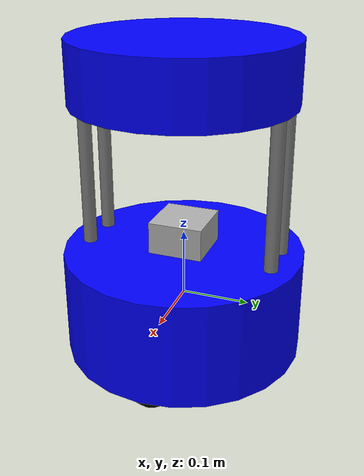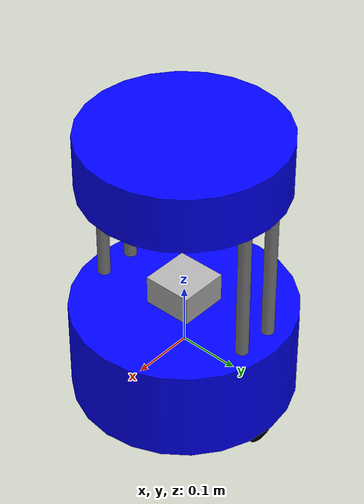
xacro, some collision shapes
<?xml version="1.0"?>

<robot xmlns:xacro="http://www.ros.org/wiki/xacro" name="barista_robot">

  <xacro:include filename="$(find barista_robot_description)/xacro/standoff.xacro" />
  <xacro:include filename="$(find barista_robot_description)/xacro/wheel.xacro" />
  <xacro:include filename="$(find barista_robot_description)/xacro/cup_holder_tray.xacro" />

  <xacro:arg name="include_laser" default="true"/>
  <xacro:arg name="robot_name" default=""/>
  <xacro:arg name="color" default="blue"/>

  <xacro:property name="robot_name" value="$(arg robot_name)"/>
  <xacro:property name="color" value="$(arg color)"/>
  <xacro:if value="${robot_name == ''}">
    <xacro:property name="prefix" value=""/>
  </xacro:if>
  <xacro:unless value="${robot_name == ''}">
    <xacro:property name="prefix" value="${robot_name}_"/>
  </xacro:unless>

  <material name="gray">
      <color rgba="0.5 0.5 0.5 1"/>
  </material>

  <material name="blue">
      <color rgba="0.0 0.0 1.0 1"/>
  </material>

  <material name="red">
      <color rgba="1.0 0.0 0.0 1"/>
  </material>

  <material name="black">
      <color rgba="0.0 0.0 0.0 1"/>
  </material>

  <link name="${prefix}base_link">
  </link>

  <!-- Chassis -->
  <joint name="${prefix}base_link_to_chassis" type="fixed">
    <origin rpy="0 0 0" xyz="0 0 0" />
    <parent link="${prefix}base_link"/>
    <child link="${prefix}chassis"/>
  </joint>

  <xacro:macro name="chassis" params="color name">
    <xacro:if value="${color == 'blue'}">
      <gazebo reference="${name}">
        <material>Gazebo/Blue</material>
      </gazebo>
    </xacro:if>

    <xacro:if value="${color == 'red'}">
      <gazebo reference="${name}">
        <material>Gazebo/Red</material>
      </gazebo>
    </xacro:if>

    <link name="${name}">
      <visual>
        <origin rpy="0 0 0" xyz="0 0 0"/>
        <geometry>
          <cylinder length="0.155" radius="0.178"/>
        </geometry>
        <material name="${color}"/>
      </visual>
      <collision>
        <origin rpy="0 0 0" xyz="0 0 0"/>
        <geometry>
          <cylinder length="0.155" radius="0.178"/>
        </geometry>
      </collision>
      <inertial>
        <origin rpy="0 0 0" xyz="0 0 0"/>
        <mass value="5"/>
        <inertia ixx="0.04961541666666667" ixy="0.0" ixz="0.0" iyy="0.04961541666666667" iyz="0.0" izz="0.07920999999999999"/>
      </inertial>
    </link>
  </xacro:macro>

  <xacro:chassis name="${prefix}chassis" color="${color}"/>

  <!-- Left Wheel -->
  <joint name="${prefix}chassis_to_left_wheel" type="continuous">
    <origin rpy="-1.57 0 0" xyz="0.0 0.150 -0.0775"/>
    <parent link="${prefix}chassis"/>
    <child link="${prefix}left_wheel"/>
    <axis rpy="0 0 0" xyz="0 0 1"/>
    <limit effort="10000" velocity="1000"/>
    <joint_properties damping="1.0" friction="1.0"/>
  </joint>

  <xacro:wheel wheel_name="${prefix}left_wheel" />

  <!-- Right Wheel -->
  <joint name="${prefix}chassis_to_right_wheel" type="continuous">
    <origin rpy="-1.57 0 0" xyz="0.0 -0.150 -0.0775"/>
    <parent link="${prefix}chassis"/>
    <child link="${prefix}right_wheel"/>
    <axis rpy="0 0 0" xyz="0 0 1"/>
    <limit effort="10000" velocity="1000"/>
    <joint_properties damping="1.0" friction="1.0"/>
  </joint>

  <xacro:wheel wheel_name="${prefix}right_wheel" />

  <!-- Caster Wheel Front -->
  <joint name="${prefix}front_yaw_joint" type="continuous">
    <origin rpy="0 0 0" xyz="0.130 0.0 -0.0775" />
    <parent link="${prefix}chassis" />
    <child link="${prefix}front_yaw_link" />
    <axis xyz="0 0 1" />
    <limit effort="1000.0" velocity="100.0" />
    <dynamics damping="0.0" friction="0.1"/>
  </joint>

  <link name="${prefix}front_yaw_link">
      <visual>
        <origin rpy="0 1.5707 1.5707" xyz="0 0 0"/>
        <geometry>
          <cylinder length="0.001" radius="0.0045000000000000005"/>
        </geometry>
        <material name="black"/>
      </visual>
      <collision>
        <origin rpy="0 1.5707 1.5707" xyz="0 0 0"/>
        <geometry>
          <cylinder length="0.001" radius="0.0045000000000000005"/>
        </geometry>
      </collision>
      <inertial>
          <origin rpy="0 1.5707 1.5707" xyz="0 0 0"/>
          <mass value="0.001"/>
          <inertia ixx="5.145833333333334e-09" ixy="0" ixz="0" iyy="5.145833333333334e-09" iyz="0" izz="1.0125000000000003e-08"/>
      </inertial>
  </link>

  <joint name="${prefix}front_roll_joint" type="continuous">
    <origin rpy="0 0 0" xyz="0 0 0" />
    <parent link="${prefix}front_yaw_link" />
    <child link="${prefix}front_roll_link" />
    <axis xyz="1 0 0" />
    <limit effort="1000.0" velocity="100.0" />
    <dynamics damping="0.0" friction="0.1"/>
  </joint>

  <link name="${prefix}front_roll_link">
      <visual>
        <origin rpy="0 1.5707 1.5707" xyz="0 0 0"/>
        <geometry>
          <cylinder length="0.001" radius="0.0045000000000000005"/>
        </geometry>
        <material name="black"/>
      </visual>
      <collision>
        <origin rpy="0 1.5707 1.5707" xyz="0 0 0"/>
        <geometry>
          <cylinder length="0.001" radius="0.0045000000000000005"/>
        </geometry>
      </collision>
      <inertial>
          <origin rpy="0 1.5707 1.5707" xyz="0 0 0"/>
          <mass value="0.001"/>
          <inertia ixx="5.145833333333334e-09" ixy="0" ixz="0" iyy="5.145833333333334e-09" iyz="0" izz="1.0125000000000003e-08"/>
      </inertial>
  </link>

  <joint name="${prefix}front_pitch_joint" type="continuous">
    <origin rpy="0 0 0" xyz="0 0 0" />
    <parent link="${prefix}front_roll_link" />
    <child link="${prefix}front_pitch_link" />
    <axis xyz="0 1 0" />
    <limit effort="1000.0" velocity="100.0" />
    <dynamics damping="0.0" friction="0.1"/>
  </joint>

  <gazebo reference="{prefix}front_pitch_link">
    <kp>1000000000000000000000000000.0</kp>
    <kd>1000000000000000000000000000.0</kd>
    <mu1>0.5</mu1>
    <mu2>0.5</mu2>
    <material>Gazebo/Black</material>
  </gazebo>

  <link name="${prefix}front_pitch_link">
    <visual>
      <origin rpy="0 1.5707 1.5707" xyz="0 0 0"/>
      <geometry>
        <sphere radius="0.0352"/>
      </geometry>
      <material name="black"/>
    </visual>
    <collision>
      <origin rpy="0 1.5707 1.5707" xyz="0 0 0"/>
      <geometry>
        <sphere radius="0.0352"/>
      </geometry>
    </collision>
    <inertial>
        <origin rpy="0 1.5707 1.5707" xyz="0 0 0"/>
        <mass value="0.001"/>
        <inertia ixx="5e-07" ixy="0" ixz="0" iyy="5e-07" iyz="0" izz="5e-07"/>
    </inertial>
  </link>

  <!-- Caster Wheel Back -->
  <joint name="${prefix}back_yaw_joint" type="continuous">
    <origin rpy="0 0 0" xyz="-0.130 0.0 -0.0775" />
    <parent link="${prefix}chassis" />
    <child link="${prefix}back_yaw_link" />
    <axis xyz="0 0 1" />
    <limit effort="1000.0" velocity="100.0" />
    <dynamics damping="0.0" friction="0.1"/>
  </joint>

  <link name="${prefix}back_yaw_link">
      <visual>
        <origin rpy="0 1.5707 1.5707" xyz="0 0 0"/>
        <geometry>
          <cylinder length="0.001" radius="0.0045000000000000005"/>
        </geometry>
        <material name="black"/>
      </visual>
      <collision>
        <origin rpy="0 1.5707 1.5707" xyz="0 0 0"/>
        <geometry>
          <cylinder length="0.001" radius="0.0045000000000000005"/>
        </geometry>
      </collision>
      <inertial>
          <origin rpy="0 1.5707 1.5707" xyz="0 0 0"/>
          <mass value="0.001"/>
          <inertia ixx="5.145833333333334e-09" ixy="0" ixz="0" iyy="5.145833333333334e-09" iyz="0" izz="1.0125000000000003e-08"/>
      </inertial>
  </link>

  <joint name="${prefix}back_roll_joint" type="continuous">
    <origin rpy="0 0 0" xyz="0 0 0" />
    <parent link="${prefix}back_yaw_link" />
    <child link="${prefix}back_roll_link" />
    <axis xyz="1 0 0" />
    <limit effort="1000.0" velocity="100.0" />
    <dynamics damping="0.0" friction="0.1"/>
  </joint>

  <link name="${prefix}back_roll_link">
      <visual>
        <origin rpy="0 1.5707 1.5707" xyz="0 0 0"/>
        <geometry>
          <cylinder length="0.001" radius="0.0045000000000000005"/>
        </geometry>
        <material name="black"/>
      </visual>
      <collision>
        <origin rpy="0 1.5707 1.5707" xyz="0 0 0"/>
        <geometry>
          <cylinder length="0.001" radius="0.0045000000000000005"/>
        </geometry>
      </collision>
      <inertial>
          <origin rpy="0 1.5707 1.5707" xyz="0 0 0"/>
          <mass value="0.001"/>
          <inertia ixx="5.145833333333334e-09" ixy="0" ixz="0" iyy="5.145833333333334e-09" iyz="0" izz="1.0125000000000003e-08"/>
      </inertial>
  </link>

  <joint name="${prefix}back_pitch_joint" type="continuous">
    <origin rpy="0 0 0" xyz="0 0 0" />
    <parent link="${prefix}back_roll_link" />
    <child link="${prefix}back_pitch_link" />
    <axis xyz="0 1 0" />
    <limit effort="1000.0" velocity="100.0" />
    <dynamics damping="0.0" friction="0.1"/>
  </joint>

  <gazebo reference="{prefix}back_pitch_link">
    <kp>1000000000000000000000000000.0</kp>
    <kd>1000000000000000000000000000.0</kd>
    <mu1>0.5</mu1>
    <mu2>0.5</mu2>
    <material>Gazebo/Black</material>
  </gazebo>

  <link name="${prefix}back_pitch_link">
    <visual>
      <origin rpy="0 1.5707 1.5707" xyz="0 0 0"/>
      <geometry>
        <sphere radius="0.0352"/>
      </geometry>
      <material name="black"/>
    </visual>
    <collision>
      <origin rpy="0 1.5707 1.5707" xyz="0 0 0"/>
      <geometry>
        <sphere radius="0.0352"/>
      </geometry>
    </collision>
    <inertial>
        <origin rpy="0 1.5707 1.5707" xyz="0 0 0"/>
        <mass value="0.001"/>
        <inertia ixx="5e-07" ixy="0" ixz="0" iyy="5e-07" iyz="0" izz="5e-07"/>
    </inertial>
  </link>

  <!-- Cup Holder Tray -->
  <joint name="${prefix}chassis_to_cup_holder_tray" type="fixed">
    <origin rpy="0 0 0" xyz="0 0 0.3425" />
    <parent link="${prefix}base_link"/>
    <child link="${prefix}cup_holder_tray"/>
  </joint>

  <xacro:cup_holder_tray cup_holder_tray_name="${prefix}cup_holder_tray" color="${color}"/>

  <!-- Standoff Rod Back Left -->
  <joint name="${prefix}chassis_to_standoff_rod_back_left" type="fixed">
    <origin rpy="0 0 0" xyz="-0.030 0.140 0.1875" />
    <parent link="${prefix}chassis"/>
    <child link="${prefix}standoff_rod_back_left"/>
  </joint>

  <xacro:standoff standoff_name="${prefix}standoff_rod_back_left"/>

  <!-- Standoff Rod Back Right -->
  <joint name="${prefix}chassis_to_standoff_rod_back_right" type="fixed">
    <origin rpy="0 0 0" xyz="-0.030 -0.140 0.1875" />
    <parent link="${prefix}chassis"/>
    <child link="${prefix}standoff_rod_back_right"/>
  </joint>

  <xacro:standoff standoff_name="${prefix}standoff_rod_back_right"/>

  <!-- Standoff Rod Front Left -->
  <joint name="${prefix}chassis_to_standoff_rod_front_left" type="fixed">
    <origin rpy="0 0 0" xyz="0.030 0.140 0.1875"/>
    <parent link="${prefix}chassis"/>
    <child link="${prefix}standoff_rod_front_left"/>
  </joint>

  <xacro:standoff standoff_name="${prefix}standoff_rod_front_left"/>

  <!-- Standoff Rod Front Right -->
  <joint name="${prefix}chassis_to_standoff_rod_front_right" type="fixed">
    <origin rpy="0 0 0" xyz="0.030 -0.140 0.1875"/>
    <parent link="${prefix}chassis"/>
    <child link="${prefix}standoff_rod_front_right"/>
  </joint>

  <xacro:standoff standoff_name="${prefix}standoff_rod_front_right"/>

  <!--Laser-->
  <joint name="${prefix}chassis_to_laser_scan_link" type="fixed">
    <origin rpy="0 0 0" xyz="0.0 0.0 0.0775"/>
    <parent link="${prefix}chassis"/>
    <child link="${prefix}laser_scan_link"/>
  </joint>

  <link name="${prefix}laser_scan_link">
    <visual>
      <origin rpy="0 0 0" xyz="0 0 0"/>
      <geometry>
        <mesh filename="package://barista_robot_description/meshes/hokuyo_uam05lp.dae" scale="1.0 1.0 1.0"/>
      </geometry>
    </visual>
    <collision>
      <origin rpy="0 0 0" xyz="0 0 0"/>
      <geometry>
        <!--from datasheet-->
        <box size="0.08 0.08 0.095"/>
      </geometry>
    </collision>
    <inertial>
      <!--from datasheet-->
      <mass value="0.8"/>
      <origin rpy="0 0 0" xyz="0 0 0.0"/>
      <!--based on the collision geometry-->
      <inertia ixx="0.0010283333333333334" ixy="0" ixz="0" iyy="0.0010283333333333334" iyz="0" izz="0.0008533333"/>
    </inertial>
  </link>

  <joint name="${prefix}laser_scan_link_to_laser_scan_frame" type="fixed">
    <origin rpy="0 0 0" xyz="0 0 0.08"/>
    <parent link="${prefix}laser_scan_link"/>
    <child link="${prefix}laser_scan_frame"/>
  </joint>

  <link name="${prefix}laser_scan_frame">
  </link>

  <xacro:macro name="laser" params="include_laser">
    <xacro:if value="${include_laser}">
      <gazebo reference="${prefix}laser_scan_frame">
        <sensor name="sensor_ray" type="ray">
          <pose>0 0 0 0 0 0</pose>
          <ray>
            <scan>
              <horizontal>
                <samples>200</samples>
                <resolution>1.0</resolution>
                <min_angle>-3.1416</min_angle>
                <max_angle>3.1416</max_angle>
              </horizontal>
            </scan>
            <range>
              <min>0.1</min>
              <max>5.0</max>
            </range>
          </ray>
          <always_on>true</always_on>
          <visualize>true</visualize>
          <update_rate>33</update_rate>
          <plugin name="laser" filename="libgazebo_ros_ray_sensor.so">
            <ros>
              <namespace>/${robot_name}</namespace>
              <remapping>~/out:=scan</remapping>
            </ros>
            <output_type>sensor_msgs/LaserScan</output_type>
          </plugin>
        </sensor>
      </gazebo>
    </xacro:if>
  </xacro:macro>

  <xacro:laser include_laser="$(arg include_laser)"/>

  <!-- Joint Publisher -->
  <gazebo>
    <plugin name="barista_robot_joint_state" filename="libgazebo_ros_joint_state_publisher.so">
      <ros>
          <namespace>/${robot_name}</namespace>
          <remapping>~/out:=joint_states</remapping>
      </ros>
      <update_rate>30</update_rate>
      <joint_name>${prefix}chassis_to_left_wheel</joint_name>
      <joint_name>${prefix}chassis_to_right_wheel</joint_name>
      <joint_name>${prefix}front_yaw_joint</joint_name>
      <joint_name>${prefix}front_roll_joint</joint_name>
      <joint_name>${prefix}front_pitch_joint</joint_name>
      <joint_name>${prefix}back_yaw_joint</joint_name>
      <joint_name>${prefix}back_roll_joint</joint_name>
      <joint_name>${prefix}back_pitch_joint</joint_name>
    </plugin>
  </gazebo>

  <!-- Differential drive -->
  <gazebo>
    <plugin filename="libgazebo_ros_diff_drive.so" name="differential_drive_controller">
      <ros>
        <namespace>/${robot_name}</namespace>
        <remapping>/cmd_vel:=cmd_vel</remapping>
      </ros>
      <!-- wheels -->
      <left_joint>${prefix}chassis_to_left_wheel</left_joint>
      <right_joint>${prefix}chassis_to_right_wheel</right_joint>

      <!-- kinematics -->
      <wheel_separation>0.300</wheel_separation>
      <wheel_diameter>0.0704</wheel_diameter>

      <!-- limits -->
      <max_wheel_torque>1.0</max_wheel_torque>
      <max_wheel_acceleration>2.0</max_wheel_acceleration>

      <!-- output -->
      <publish_odom>true</publish_odom>
      <publish_odom_tf>true</publish_odom_tf>

      <odometry_frame>${prefix}odom</odometry_frame>
      <robot_base_frame>${prefix}base_link</robot_base_frame>
    </plugin>
  </gazebo>
</robot>

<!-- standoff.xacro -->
<robot xmlns:xacro="http://www.ros.org/wiki/xacro">
<xacro:macro name="standoff" params="standoff_name">
  <gazebo reference="${standoff_name}">
    <material>Gazebo/Gray</material>
  </gazebo>

  <link name="${standoff_name}">
    <visual>
      <origin rpy="0 0 0" xyz="0 0 0"/>
      <geometry>
        <cylinder length="0.220" radius="0.010"/>
      </geometry>
      <material name="gray"/>
    </visual>
    <collision>
      <origin rpy="0 0 0" xyz="0 0 0"/>
      <geometry>
        <cylinder length="0.220" radius="0.010"/>
      </geometry>
    </collision>
    <inertial>
      <origin rpy="0 0 0" xyz="0 0 0"/>
      <mass value="0.5"/>
      <inertia ixx="0.0020291666666666665" ixy="0.0" ixz="0.0" iyy="0.0020291666666666665" iyz="0.0" izz="2.5e-05"/>
    </inertial>
  </link>
</xacro:macro>
</robot>

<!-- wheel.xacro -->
<robot xmlns:xacro="http://www.ros.org/wiki/xacro">
<xacro:macro name="wheel" params="wheel_name">
  <xacro:property name="wheel_radius" value="0.0352"/>
  <xacro:property name="wheel_width" value="0.0206"/>

  <gazebo reference="${wheel_name}">
    <kp>1000000000000000000000000000.0</kp>
    <kd>1000000000000000000000000000.0</kd>
    <mu1>0.5</mu1>
    <mu2>0.5</mu2>
    <material>Gazebo/Black</material>
  </gazebo>

  <link name="${wheel_name}">
      <visual>
        <origin rpy="0 0.0 0.0" xyz="0 0 0"/>
        <geometry>
          <cylinder length="${wheel_width}" radius="${wheel_radius}"/>
        </geometry>
        <material name="black"/>
      </visual>
      <collision>
        <origin rpy="0 0.0 0.0" xyz="0 0 0"/>
        <geometry>
          <cylinder length="${wheel_width}" radius="${wheel_radius}"/>
        </geometry>
      </collision>
      <inertial>
        <origin rpy="0 0.0 0.0" xyz="0 0 0"/>
        <mass value="0.05"/>
        <inertia ixx="1.725616666666667e-05" ixy="0" ixz="0" iyy="1.725616666666667e-05" iyz="0" izz="3.0976e-05"/>
      </inertial>
  </link>
</xacro:macro>
</robot>

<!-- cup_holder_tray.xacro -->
<robot xmlns:xacro="http://www.ros.org/wiki/xacro">
<xacro:macro name="cup_holder_tray" params="cup_holder_tray_name:=cup_holder_tray color:=blue">
  <xacro:if value="${color == 'blue'}">
    <gazebo reference="${cup_holder_tray_name}">
      <material>Gazebo/Blue</material>
    </gazebo>
  </xacro:if>

  <xacro:if value="${color == 'red'}">
    <gazebo reference="${cup_holder_tray_name}">
      <material>Gazebo/Red</material>
    </gazebo>
  </xacro:if>

  <link name="${cup_holder_tray_name}">
    <visual>
      <origin rpy="0 0 0" xyz="0 0 0"/>
      <geometry>
        <cylinder length="0.090" radius="0.160"/>
      </geometry>
      <material name="${color}"/>
    </visual>
    <collision>
      <origin rpy="0 0 0" xyz="0 0 0"/>
      <geometry>
        <cylinder length="0.090" radius="0.160"/>
      </geometry>
    </collision>
    <inertial>
      <origin rpy="0 0 0" xyz="0 0 0"/>
      <mass value="1.0"/>
      <inertia ixx="0.007075" ixy="0.0" ixz="0.0" iyy="0.007075" iyz="0.0" izz="0.0128"/>
    </inertial>
  </link>
</xacro:macro>
</robot>
